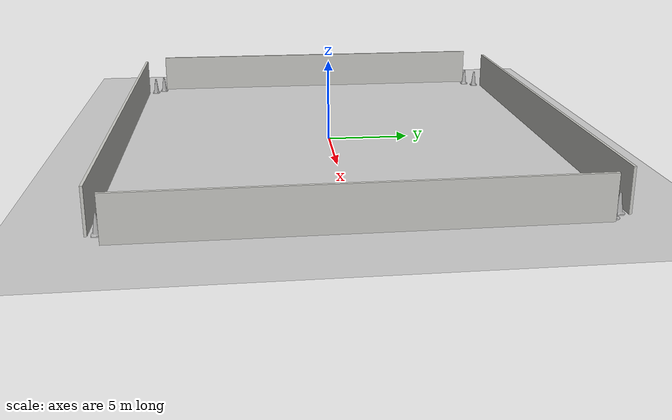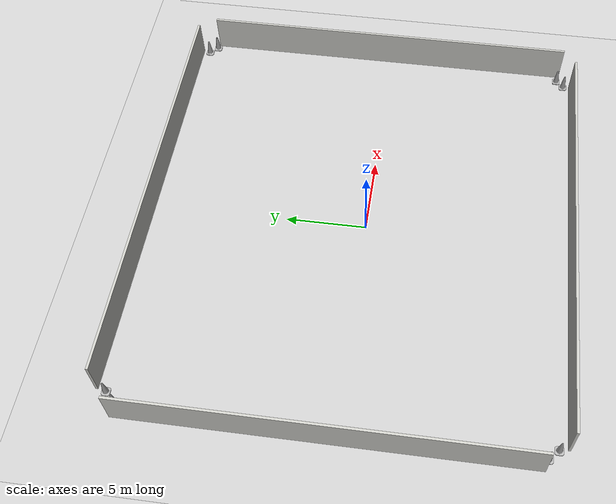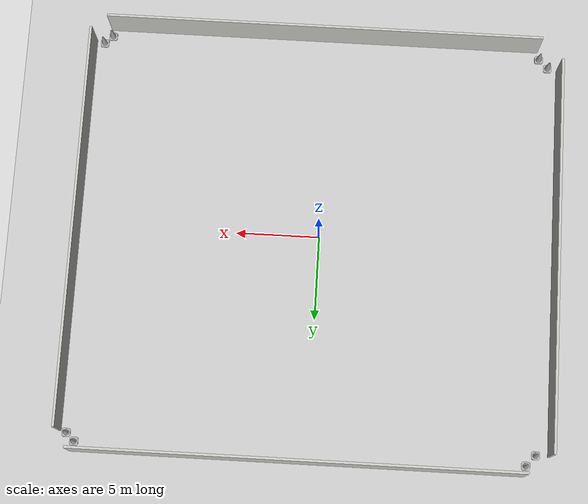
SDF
<sdf version="1.7">
 <world name="default">
  <light name="sun" type="directional">
   <pose>0 0 10 0 -0 0</pose>
   <diffuse>0.8 0.8 0.8 1</diffuse>
   <specular>0.2 0.2 0.2 1</specular>
   <attenuation>
    <range>1000</range>
    <constant>0.9</constant>
    <linear>0.01</linear>
    <quadratic>0.001</quadratic>
   </attenuation>
   <direction>-0.5 0.1 -0.9</direction>
   <spot><inner_angle>0</inner_angle><outer_angle>0</outer_angle><falloff>0</falloff></spot>
  </light>
  <model name="ground_plane">
   <static>1</static>
   <link name="link">
    <collision name="collision">
     <geometry><plane><normal>0 0 1</normal><size>100 100</size></plane></geometry>
     <surface><friction><ode><mu>100</mu><mu2>50</mu2></ode></friction></surface>
    </collision>
    <visual name="visual">
     <cast_shadows>0</cast_shadows>
     <geometry><plane><normal>0 0 1</normal><size>100 100</size></plane></geometry>
     <material>
      <script><uri>file://media/materials/scripts/gazebo.material</uri><name>Gazebo/Grey</name></script>
     </material>
    </visual>
   </link>
  </model>
  <gravity>0 0 -9.8</gravity>
  <magnetic_field>6e-06 2.3e-05 -4.2e-05</magnetic_field>
  <atmosphere type="adiabatic"/>
  <physics type="ode">
   <max_step_size>0.001</max_step_size>
   <real_time_factor>1</real_time_factor>
   <real_time_update_rate>1000</real_time_update_rate>
  </physics>
  <scene><ambient>0.4 0.4 0.4 1</ambient><background>0.7 0.7 0.7 1</background><shadows>1</shadows></scene>
  <audio><device>default</device></audio>
  <spherical_coordinates>
   <surface_model>EARTH_WGS84</surface_model>
   <latitude_deg>0</latitude_deg>
   <longitude_deg>0</longitude_deg>
   <elevation>0</elevation>
   <heading_deg>0</heading_deg>
  </spherical_coordinates>
  <model name="bot_world">
   <pose>0.189603 0.448932 0 0 -0 0</pose>
   <link name="Wall_1">
    <collision name="Wall_1_Collision">
     <geometry><box><size>26.5 0.15 2.5</size></box></geometry>
     <pose>0 0 1.25 0 -0 0</pose>
    </collision>
    <visual name="Wall_1_Visual">
     <pose>0 0 1.25 0 -0 0</pose>
     <geometry><box><size>26.5 0.15 2.5</size></box></geometry>
     <material>
      <script><uri>file://media/materials/scripts/gazebo.material</uri><name>Gazebo/CeilingTiled</name></script>
      <ambient>1 1 1 1</ambient>
     </material>
     <meta><layer>0</layer></meta>
    </visual>
    <pose>0.370484 13.067 0 0 -0 0</pose>
   </link>
   <link name="Wall_4">
    <collision name="Wall_4_Collision">
     <geometry><box><size>23.75 0.15 2.5</size></box></geometry>
     <pose>0 0 1.25 0 -0 0</pose>
    </collision>
    <visual name="Wall_4_Visual">
     <pose>0 0 1.25 0 -0 0</pose>
     <geometry><box><size>23.75 0.15 2.5</size></box></geometry>
     <material>
      <script><uri>file://media/materials/scripts/gazebo.material</uri><name>Gazebo/CeilingTiled</name></script>
      <ambient>1 1 1 1</ambient>
     </material>
     <meta><layer>0</layer></meta>
    </visual>
    <pose>-14.3333 0.058185 0 0 -0 -1.5708</pose>
   </link>
   <link name="Wall_6">
    <collision name="Wall_6_Collision">
     <geometry><box><size>26.5 0.15 2.5</size></box></geometry>
     <pose>0 0 1.25 0 -0 0</pose>
    </collision>
    <visual name="Wall_6_Visual">
     <pose>0 0 1.25 0 -0 0</pose>
     <geometry><box><size>26.5 0.15 2.5</size></box></geometry>
     <material>
      <script><uri>file://media/materials/scripts/gazebo.material</uri><name>Gazebo/CeilingTiled</name></script>
      <ambient>1 1 1 1</ambient>
     </material>
     <meta><layer>0</layer></meta>
    </visual>
    <pose>0.158501 -13.067 0 0 -0 0</pose>
   </link>
   <link name="Wall_8">
    <collision name="Wall_8_Collision">
     <geometry><box><size>24.25 0.15 2.5</size></box></geometry>
     <pose>0 0 1.25 0 -0 0</pose>
    </collision>
    <visual name="Wall_8_Visual">
     <pose>0 0 1.25 0 -0 0</pose>
     <geometry><box><size>24.25 0.15 2.5</size></box></geometry>
     <material>
      <script><uri>file://media/materials/scripts/gazebo.material</uri><name>Gazebo/CeilingTiled</name></script>
      <ambient>1 1 1 1</ambient>
     </material>
     <meta><layer>0</layer></meta>
    </visual>
    <pose>14.3333 -0.150732 0 0 -0 1.5708</pose>
   </link>
   <static>1</static>
  </model>
  <model name="Construction Cone">
   <link name="link">
    <collision name="collision">
     <geometry>
      <mesh><scale>10 10 10</scale><uri>model://construction_cone/meshes/construction_cone.dae</uri></mesh>
     </geometry>
    </collision>
    <visual name="visual">
     <geometry>
      <mesh><scale>10 10 10</scale><uri>model://construction_cone/meshes/construction_cone.dae</uri></mesh>
     </geometry>
    </visual>
    <inertial>
     <inertia><ixx>1</ixx><ixy>0</ixy><ixz>0</ixz><iyy>1</iyy><iyz>0</iyz><izz>1</izz></inertia>
     <mass>1</mass>
    </inertial>
   </link>
   <pose>13.6487 12.9916 0 -0 -0 -0</pose>
  </model>
  <model name="Construction Cone_0">
   <link name="link">
    <collision name="collision">
     <geometry>
      <mesh><scale>10 10 10</scale><uri>model://construction_cone/meshes/construction_cone.dae</uri></mesh>
     </geometry>
    </collision>
    <visual name="visual">
     <geometry>
      <mesh><scale>10 10 10</scale><uri>model://construction_cone/meshes/construction_cone.dae</uri></mesh>
     </geometry>
    </visual>
    <inertial>
     <inertia><ixx>1</ixx><ixy>0</ixy><ixz>0</ixz><iyy>1</iyy><iyz>0</iyz><izz>1</izz></inertia>
     <mass>1</mass>
    </inertial>
   </link>
   <pose>14.1421 12.5021 -0 0 -0 0</pose>
  </model>
  <model name="Construction Cone_1">
   <link name="link">
    <collision name="collision">
     <geometry>
      <mesh><scale>10 10 10</scale><uri>model://construction_cone/meshes/construction_cone.dae</uri></mesh>
     </geometry>
    </collision>
    <visual name="visual">
     <geometry>
      <mesh><scale>10 10 10</scale><uri>model://construction_cone/meshes/construction_cone.dae</uri></mesh>
     </geometry>
    </visual>
    <inertial>
     <inertia><ixx>1</ixx><ixy>0</ixy><ixz>0</ixz><iyy>1</iyy><iyz>0</iyz><izz>1</izz></inertia>
     <mass>1</mass>
    </inertial>
   </link>
   <pose>13.981 -11.6586 -8e-06 7e-06 -0 0</pose>
  </model>
  <model name="Construction Cone_2">
   <link name="link">
    <collision name="collision">
     <geometry>
      <mesh><scale>10 10 10</scale><uri>model://construction_cone/meshes/construction_cone.dae</uri></mesh>
     </geometry>
    </collision>
    <visual name="visual">
     <geometry>
      <mesh><scale>10 10 10</scale><uri>model://construction_cone/meshes/construction_cone.dae</uri></mesh>
     </geometry>
    </visual>
    <inertial>
     <inertia><ixx>1</ixx><ixy>0</ixy><ixz>0</ixz><iyy>1</iyy><iyz>0</iyz><izz>1</izz></inertia>
     <mass>1</mass>
    </inertial>
   </link>
   <pose>13.4885 -12.1239 -6e-06 2e-06 -0 0</pose>
  </model>
  <model name="Construction Cone_3">
   <link name="link">
    <collision name="collision">
     <geometry>
      <mesh><scale>10 10 10</scale><uri>model://construction_cone/meshes/construction_cone.dae</uri></mesh>
     </geometry>
    </collision>
    <visual name="visual">
     <geometry>
      <mesh><scale>10 10 10</scale><uri>model://construction_cone/meshes/construction_cone.dae</uri></mesh>
     </geometry>
    </visual>
    <inertial>
     <inertia><ixx>1</ixx><ixy>0</ixy><ixz>0</ixz><iyy>1</iyy><iyz>0</iyz><izz>1</izz></inertia>
     <mass>1</mass>
    </inertial>
   </link>
   <pose>-13.3679 12.3212 -0 0 -1e-06 0</pose>
  </model>
  <model name="Construction Cone_4">
   <link name="link">
    <collision name="collision">
     <geometry>
      <mesh><scale>10 10 10</scale><uri>model://construction_cone/meshes/construction_cone.dae</uri></mesh>
     </geometry>
    </collision>
    <visual name="visual">
     <geometry>
      <mesh><scale>10 10 10</scale><uri>model://construction_cone/meshes/construction_cone.dae</uri></mesh>
     </geometry>
    </visual>
    <inertial>
     <inertia><ixx>1</ixx><ixy>0</ixy><ixz>0</ixz><iyy>1</iyy><iyz>0</iyz><izz>1</izz></inertia>
     <mass>1</mass>
    </inertial>
   </link>
   <pose>-12.8059 12.954 -0 0 -0 0</pose>
  </model>
  <model name="Construction Cone_5">
   <link name="link">
    <collision name="collision">
     <geometry>
      <mesh><scale>10 10 10</scale><uri>model://construction_cone/meshes/construction_cone.dae</uri></mesh>
     </geometry>
    </collision>
    <visual name="visual">
     <geometry>
      <mesh><scale>10 10 10</scale><uri>model://construction_cone/meshes/construction_cone.dae</uri></mesh>
     </geometry>
    </visual>
    <inertial>
     <inertia><ixx>1</ixx><ixy>0</ixy><ixz>0</ixz><iyy>1</iyy><iyz>0</iyz><izz>1</izz></inertia>
     <mass>1</mass>
    </inertial>
   </link>
   <pose>-12.9894 -12.0756 -0 0 -0 0</pose>
  </model>
  <model name="Construction Cone_6">
   <link name="link">
    <collision name="collision">
     <geometry>
      <mesh><scale>10 10 10</scale><uri>model://construction_cone/meshes/construction_cone.dae</uri></mesh>
     </geometry>
    </collision>
    <visual name="visual">
     <geometry>
      <mesh><scale>10 10 10</scale><uri>model://construction_cone/meshes/construction_cone.dae</uri></mesh>
     </geometry>
    </visual>
    <inertial>
     <inertia><ixx>1</ixx><ixy>0</ixy><ixz>0</ixz><iyy>1</iyy><iyz>0</iyz><izz>1</izz></inertia>
     <mass>1</mass>
    </inertial>
   </link>
   <pose>-13.5371 -11.517 -0 0 -1e-06 0</pose>
  </model>
 </world>
</sdf>
